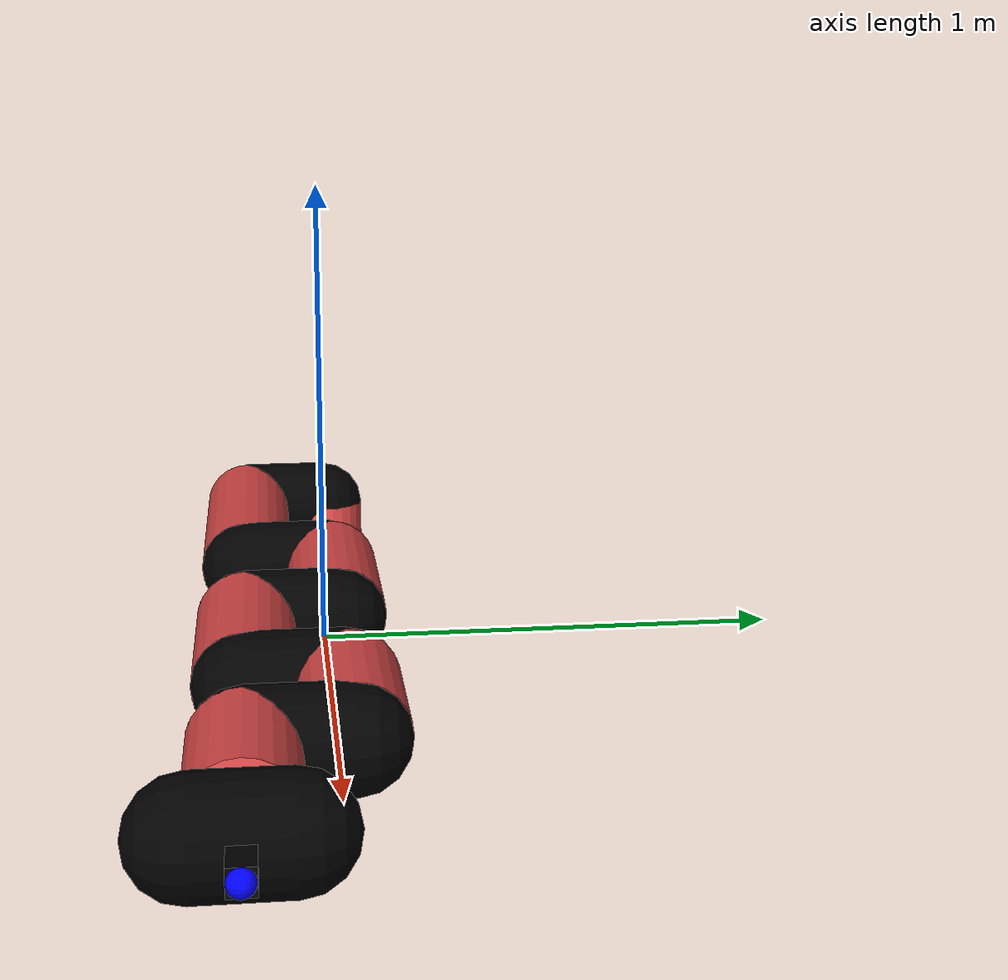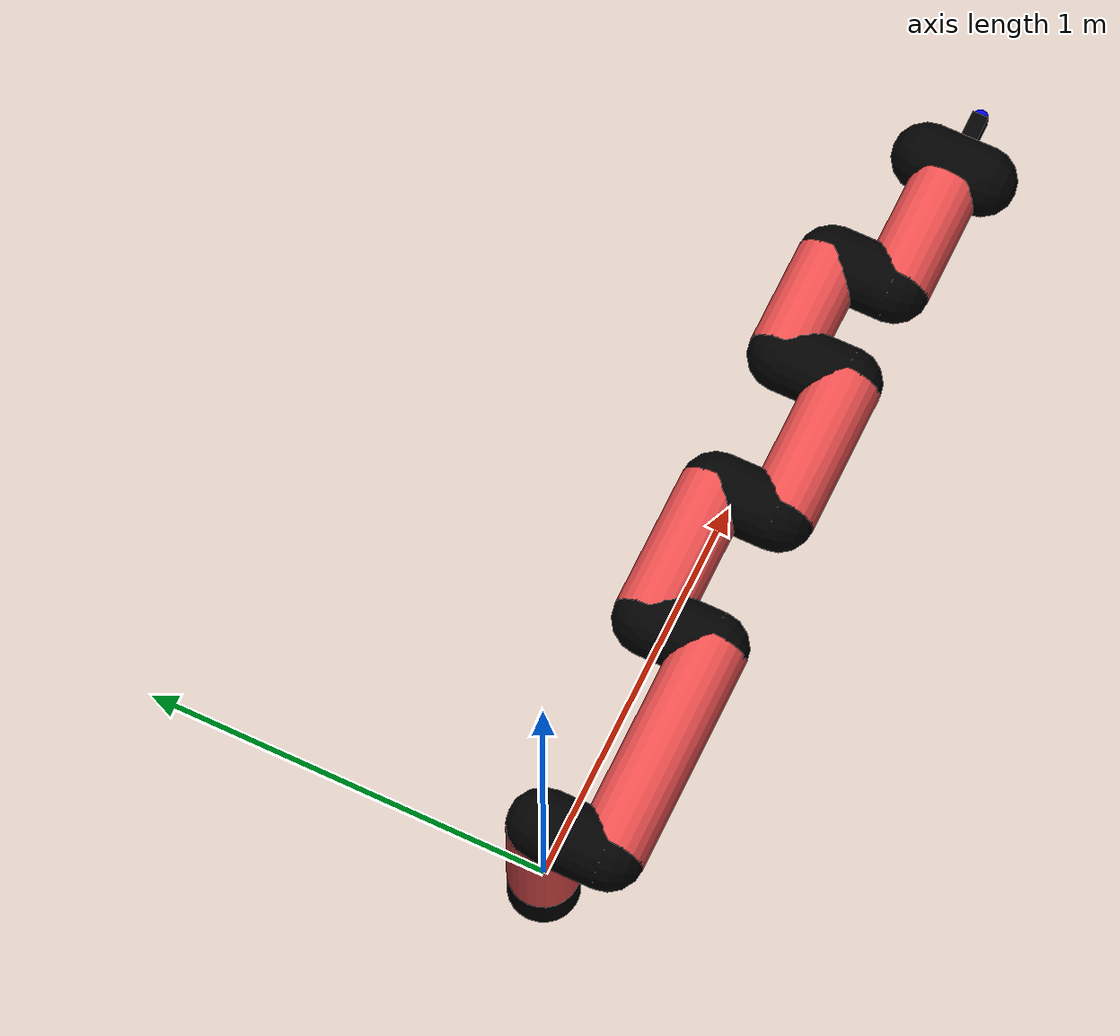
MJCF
<mujoco model="manipulator">
		<compiler angle="degree" coordinate="local" inertiafromgeom="auto" meshdir="meshes/"/>
		<option gravity="0 0 0" integrator="RK4" iterations="30" timestep="0.01"/>

		<default>
		<joint armature="1" limited="true" stiffness="10" damping="15" frictionloss="5.0"/>
		<geom conaffinity="1" condim="3" contype="1" friction=".5 .1 .1" margin="0.002"/>
		<motor ctrllimited="true"/>
		<position ctrllimited="true"/>
		</default>

		<asset>
		<texture builtin="gradient" height="100" rgb1="1.0 1.0 1.0" rgb2="1.0 1.0 1.0" type="skybox" width="100"/>
		<texture builtin="flat" height="32" name="arm_tex" rgb1="0.9 0.3 0.3" type="2d" width="32"/>
		<texture builtin="flat" height="32" name="gripper_tex" rgb1="0.0 0.0 0.0" type="cube" width="32"/>

		<material name="arm_mat" shininess="0.1" specular="0.1" texture="arm_tex"/>
		<material name="gripper_mat" shininess="1" specular="1" texture="gripper_tex"/>
		</asset>

		<worldbody>
		<light cutoff="45" diffuse=".8 .8 .8" dir="0 0.16 -1" directional="false" name="light" pos="0 -2.0 8.0" specular="0.3 0.3 0.3"/>

		<body name="base_link" pos="0 0 -0.1">
		<geom fromto="0 0 0 0 0 0.1" material="arm_mat" name="base_link" rgba="0.0 0.0 0.0 1" size="0.085" type="cylinder"/>
		</body>

		<body name="l1" pos="0 0 0">
<geom fromto="0 0 0 0 0 0.31" material="arm_mat" name="l1" rgba="0.9 0.3 0.3 1" size="0.085" type="cylinder"/>
<geom fromto="0 0 0.31 0 -0.16 0.31" material="arm_mat" name="l1_ex" rgba="0.0 0.0 0.0 1" size="0.085" type="capsule"/>
<joint axis="0 0 1" name="j1" pos="0 0 0" range="-90 90" damping="34.52" frictionloss="11.64"/>

<body name="l2" pos="0 -0.16 0.31">
<geom fromto="0 0 0 0.55 0 0" material="arm_mat" name="l2" rgba="0.9 0.3 0.3 1" size="0.085" type="cylinder"/>
<geom fromto="0.55 0 0 0.55 0.16 0" material="arm_mat" name="l2_ex" rgba="0.0 0.0 0.0 1" size="0.085" type="capsule"/>
<joint axis="0.0 1.0 0.0" name="j2" pos="0 0 0" range="-90 60" damping="33.66" frictionloss="9.15"/>

<body name="l3" pos="0.55 0.16 0">
<geom fromto="0 0 0 0.36 0 0" material="arm_mat" name="l3" rgba="0.9 0.3 0.3 1" size="0.085" type="cylinder"/>
<geom fromto="0.36 0 0 0.36 -0.16 0" material="arm_mat" name="l3_ex" rgba="0.0 0.0 0.0 1" size="0.085" type="capsule"/>
<joint axis="0.0 1.0 0.0" name="j3" pos="0 0 0" range="-30 60" damping="22.66" frictionloss="11.77"/>

<body name="l4" pos="0.36 -0.16 0">
<geom fromto="0 0 0 0.37 0 0" material="arm_mat" name="l4" rgba="0.9 0.3 0.3 1" size="0.085" type="cylinder"/>
<geom fromto="0.37 0 0 0.37 0.16 0" material="arm_mat" name="l4_ex" rgba="0.0 0.0 0.0 1" size="0.085" type="capsule"/>
<joint axis="0.0 1.0 0.0" name="j4" pos="0 0 0" range="-30 60" damping="23.38" frictionloss="11.71"/>

<body name="l5" pos="0.37 0.16 0">
<geom fromto="0 0 0 0.27 0 0" material="arm_mat" name="l5" rgba="0.9 0.3 0.3 1" size="0.085" type="cylinder"/>
<geom fromto="0.27 0 0 0.27 -0.16 0" material="arm_mat" name="l5_ex" rgba="0.0 0.0 0.0 1" size="0.085" type="capsule"/>
<joint axis="0.0 1.0 0.0" name="j5" pos="0 0 0" range="-30 60" damping="29.87" frictionloss="11.67"/>

<body name="l6" pos="0.27 -0.16 0">
<geom fromto="0 0 0 0.29 0 0" material="arm_mat" name="l6" rgba="0.9 0.3 0.3 1" size="0.085" type="cylinder"/>
<joint axis="0.0 1.0 0.0" name="j6" pos="0 0 0" range="-30 60" damping="35.76" frictionloss="11.7"/>

<body name="gripper" pos="0.29 0 0">
<geom fromto="0.05 -0.07 0 0.05 0.07 0" material="gripper_mat" name="gripper" rgba="0.0 0.0 0.0 1" size="0.085" type="capsule"/><joint axis="1 0 0" name="j7" pos="0 0 0" range="-90 90" damping="15" frictionloss="5.0"/><body name="finger" pos="0.1 0 0">
<geom fromto="0 0.0 0 0.1 0.0 0" material="gripper_mat" name="finger" rgba="0.0 0.0 0.0 1" size="0.020 0.06 0.06" type="box"/>
</body>
<site name="current" pos="0.2 0. 0.0" rgba="0. 0. 1.0 1" size="0.02" type="sphere"/>
</body>
</body>
</body>
</body>
</body>
</body>
</body>
</worldbody>
<actuator>
<motor ctrllimited="true" ctrlrange="-1.0 1.0" joint="j1" gear="74.14"/>
<motor ctrllimited="true" ctrlrange="-1.0 1.0" joint="j2" gear="96.99"/>
<motor ctrllimited="true" ctrlrange="-1.0 1.0" joint="j3" gear="75.47"/>
<motor ctrllimited="true" ctrlrange="-1.0 1.0" joint="j4" gear="80.46"/>
<motor ctrllimited="true" ctrlrange="-1.0 1.0" joint="j5" gear="77.13"/>
<motor ctrllimited="true" ctrlrange="-1.0 1.0" joint="j6" gear="68.81"/>
<motor ctrllimited="true" ctrlrange="-1.0 1.0" joint="j7" gear="80"/>
</actuator>
</mujoco>
